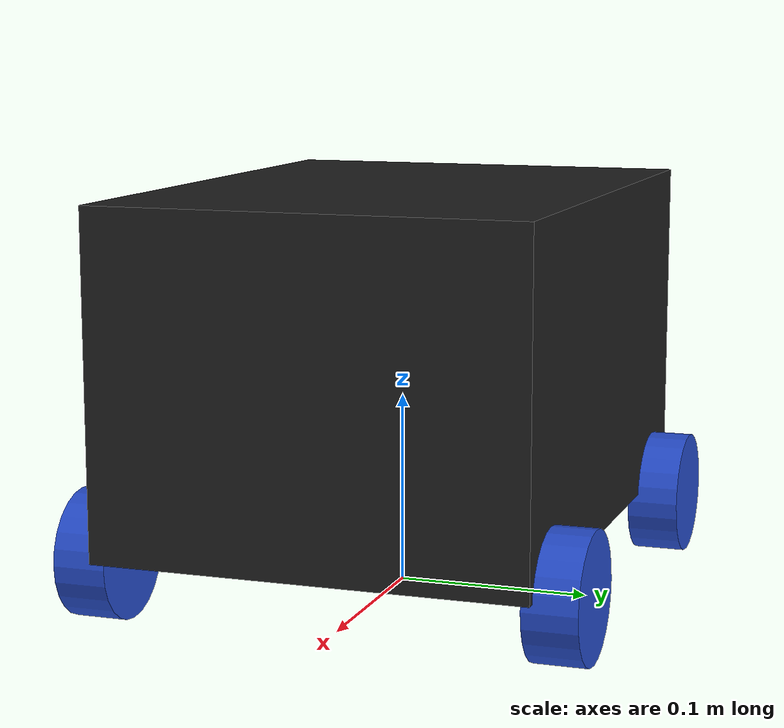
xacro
<?xml version="1.0"?>
<robot xmlns:xacro="http://www.ros.org/wiki/xacro" >
    <xacro:include filename="inertial_macros.xacro" />
    <!-- Real hardware body size (base plate). -->
    <xacro:property name="chassis_length" value="0.293"/>
    <!-- Base plate width (no wheels). -->
    <xacro:property name="chassis_width" value="0.22"/>
    <!-- Top of base is ~0.21 m above ground. -->
    <xacro:property name="chassis_height" value="0.1735"/>
    <xacro:property name="chassis_mass" value="3.0"/>
    <xacro:property name="wheel_radius" value="0.0325"/>
    <xacro:property name="wheel_thickness" value="0.027"/>
    <xacro:property name="wheel_mass" value="0.2"/>
    <!-- Wheelbase 0.22 m -> half is 0.11 m. -->
    <xacro:property name="wheel_offset_x" value="0.11"/>
    <!-- Wheel separation 0.236 m -> half is 0.118 m. -->
    <xacro:property name="wheel_offset_y" value="0.118"/>
    <xacro:property name="chassis_ground_clearance" value="0.004"/>

    <link name="base_link"></link>

    <joint name="chassis_joint" type="fixed">
        <parent link="base_link"/>
        <child link="chassis"/>
        <origin xyz="0 0 ${wheel_radius + chassis_ground_clearance}"/>
    </joint>

    <link name="chassis">
        <visual>
            <origin xyz="0 0 ${chassis_height/2}"/>
            <geometry><box size="${chassis_length} ${chassis_width} ${chassis_height}"/></geometry>
            <material name="black"/>
        </visual>
        <collision>
            <origin xyz="0 0 ${chassis_height/2}"/>
            <geometry><box size="${chassis_length} ${chassis_width} ${chassis_height}"/></geometry>
        </collision>
        <xacro:inertial_box mass="${chassis_mass}" x="${chassis_length}" y="${chassis_width}" z="${chassis_height}">
            <origin xyz="0 0 ${chassis_height/2}" rpy="0 0 0"/>
        </xacro:inertial_box>
    </link>

    <xacro:macro name="wheel" params="prefix x_reflect y_reflect">
        <joint name="${prefix}_wheel_joint" type="continuous">
            <parent link="base_link"/>
            <child link="${prefix}_wheel"/>
            <origin xyz="${x_reflect*wheel_offset_x} ${y_reflect*wheel_offset_y} ${wheel_radius}" rpy="${-pi/2} 0 0" />
            <axis xyz="0 0 1"/>
            <dynamics damping="0.2" friction="0.05"/>
        </joint>
        <link name="${prefix}_wheel">
            <visual>
                <geometry><cylinder radius="${wheel_radius}" length="${wheel_thickness}"/></geometry>
                <material name="blue"/>
            </visual>
            <collision>
                <geometry><cylinder radius="${wheel_radius}" length="${wheel_thickness}"/></geometry>
            </collision>
            <xacro:inertial_cylinder mass="${wheel_mass}" length="${wheel_thickness}" radius="${wheel_radius}">
                <origin xyz="0 0 0" rpy="0 0 0"/>
            </xacro:inertial_cylinder>
        </link>
        <gazebo reference="${prefix}_wheel">
            <material>Gazebo/Blue</material>
            <!-- Skid-steer tuning: allow controlled lateral slip so turning matches odometry better. -->
            <mu1>0.7</mu1>
            <mu2>0.5</mu2>
            <slip1>0.02</slip1>
            <slip2>0.12</slip2>
            <kp>1000000.0</kp>
            <kd>1.0</kd>
        </gazebo>
    </xacro:macro>

    <xacro:wheel prefix="front_left" x_reflect="1" y_reflect="1" />
    <xacro:wheel prefix="front_right" x_reflect="1" y_reflect="-1" />
    <xacro:wheel prefix="rear_left" x_reflect="-1" y_reflect="1" />
    <xacro:wheel prefix="rear_right" x_reflect="-1" y_reflect="-1" />

    <gazebo reference="chassis"><material>Gazebo/Black</material></gazebo>

</robot>
